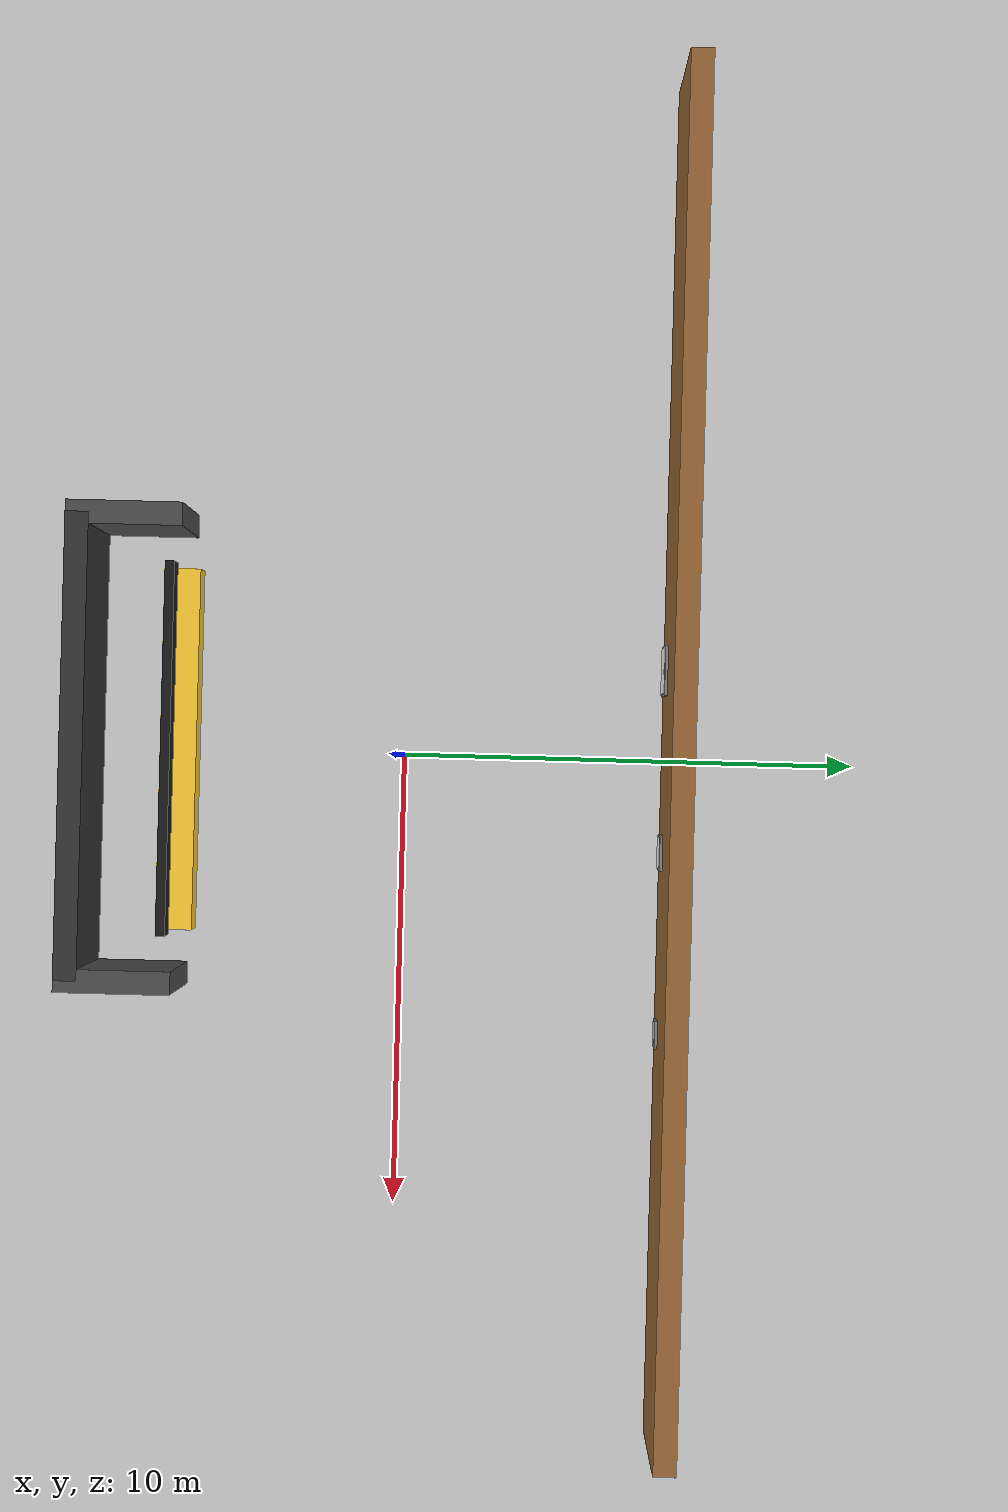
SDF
<?xml version="1.0" ?>
<sdf version="1.8">
  <world name="cafeteria_world">
    <!-- Plugins -->
    <physics name="1ms" type="ignored"><max_step_size>0.001</max_step_size><real_time_factor>1.0</real_time_factor></physics>
    <plugin filename="gz-sim-physics-system" name="gz::sim::systems::Physics"></plugin>
    <plugin filename="gz-sim-sensors-system" name="gz::sim::systems::Sensors"><render_engine>ogre</render_engine></plugin>
    <plugin filename="gz-sim-scene-broadcaster-system" name="gz::sim::systems::SceneBroadcaster"></plugin>
    <plugin filename="gz-sim-user-commands-system" name="gz::sim::systems::UserCommands"></plugin>

    <!-- Sun (Copied from corridor.sdf) -->
    <light type="directional" name="sun">
        <cast_shadows>true</cast_shadows>
        <pose>0 0 10 0 0 0</pose>
        <diffuse>0.8 0.8 0.8 1</diffuse>
        <direction>-0.5 0.1 -0.9</direction>
    </light>

    <!-- Ambient Light -->
    <light type="point" name="ambient_light">
      <pose>5 0 5 0 0 0</pose>
      <diffuse>0.9 0.9 0.9 1</diffuse>
      <cast_shadows>false</cast_shadows>
    </light>

    <!-- Ground (Copied from corridor.sdf) -->
    <model name="ground">
        <static>true</static>
        <link name="link">
            <visual name="v"><geometry><plane><normal>0 0 1</normal><size>100 100</size></plane></geometry><material><ambient>0.8 0.8 0.8 1</ambient></material></visual>
            <collision name="c"><geometry><plane><normal>0 0 1</normal></plane></geometry></collision>
        </link>
    </model>

    <!-- Kamera Açısı -->
    <gui fullscreen='0'>
      <camera name='user_camera'>
        <pose frame=''>-5 0 2 0 0.2 0</pose>
      </camera>
    </gui>

    <!-- === YAPI KISMI === -->

    <!-- Sol Duvar (Ahsap - Renk: Kahverengi) -->
    <model name="wood_wall_left">
      <static>true</static>
      <pose>0 6 2.5 0 0 0</pose>
      <link name="link">
        <collision name="collision">
          <geometry><box><size>30 0.5 5</size></box></geometry>
        </collision>
        <visual name="visual">
          <geometry><box><size>30 0.5 5</size></box></geometry>
          <material>
            <ambient>0.6 0.4 0.2 1</ambient> <!-- Kahverengi -->
            <diffuse>0.6 0.4 0.2 1</diffuse>
          </material>
        </visual>
      </link>
    </model>

    <!-- Cajun Corner Store (Replaces Pillars) -->
    <model name="cajun_corner_store">
      <static>true</static>
      <pose>0 -6 0 0 0 0</pose>

      <!-- Back Wall (Generic Grey) -->
      <link name="back_wall">
        <pose>0 -1 2 0 0 0</pose>
        <collision name="col_bw"><geometry><box><size>10 0.5 4</size></box></geometry></collision>
        <visual name="vis_bw"><geometry><box><size>10 0.5 4</size></box></geometry><material><ambient>0.2 0.2 0.2 1</ambient></material></visual>
      </link>

      <!-- Counter (Yellowish/Orange) -->
      <link name="counter">
        <pose>0 1 0.5 0 0 0</pose>
        <collision name="col_cnt"><geometry><box><size>8 0.8 1.0</size></box></geometry></collision>
        <visual name="vis_cnt">
            <geometry><box><size>8 0.8 1.0</size></box></geometry>
            <material><ambient>1.0 0.8 0.2 1</ambient><diffuse>1.0 0.8 0.2 1</diffuse></material>
        </visual>
      </link>

      <!-- Sign Board (Black with Text simulation) -->
      <link name="sign_board">
        <pose>0 1 3.5 0 0 0</pose>
        <collision name="col_sgn"><geometry><box><size>8 0.2 0.8</size></box></geometry></collision>
        <visual name="vis_sgn">
            <geometry><box><size>8 0.2 0.8</size></box></geometry>
            <material><ambient>0.1 0.1 0.1 1</ambient></material>
        </visual>
      </link>

      <!-- Side Pillars (To frame the store) -->
      <link name="side_pillar_l">
        <pose>-5 0 2 0 0 0</pose>
        <visual name="v"><geometry><box><size>0.5 2.5 4</size></box></geometry><material><ambient>0.3 0.3 0.3 1</ambient></material></visual>
      </link>
      <link name="side_pillar_r">
        <pose>5 0 2 0 0 0</pose>
        <visual name="v"><geometry><box><size>0.5 2.5 4</size></box></geometry><material><ambient>0.3 0.3 0.3 1</ambient></material></visual>
      </link>

    </model>

    <!-- === MASALAR REMOVED === -->

    <!-- === POSTERS (Integrated) === -->
    <include>
      <uri>model://poster_board_1</uri>
      <name>noticeboard_1</name>
      <pose>-2 5.74 1.25 0 0 -1.57</pose>
    </include>

    <include>
      <uri>model://poster_board_2</uri>
      <name>noticeboard_2</name>
      <pose>2 5.74 1.25 0 0 -1.57</pose>
    </include>

    <include>
      <uri>model://poster_board_3</uri>
      <name>noticeboard_3</name>
      <pose>6 5.74 1.25 0 0 -1.57</pose>
    </include>

  </world>
</sdf>

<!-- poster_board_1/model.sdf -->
<sdf version="1.8">
  <model name="poster_board">
    <static>true</static>
    <link name="link">
      <!-- Frame (Large: 1.1 width x 1.6 height) -->
      <visual name="frame">
        <geometry><box><size>0.1 1.1 1.6</size></box></geometry>
        <material><ambient>0.5 0.5 0.5 1</ambient><diffuse>0.5 0.5 0.5 1</diffuse></material>
      </visual>

      <!-- Poster Content (1.0 x 1.5) -->
      <visual name="poster">
        <pose>0.06 0 -0.05 0 0 0</pose>
        <geometry><box><size>0.01 1.0 1.5</size></box></geometry>
        <material>
          <ambient>1 1 1 1</ambient><diffuse>1 1 1 1</diffuse>
          <pbr><metal><albedo_map>materials/textures/poster.jpeg</albedo_map></metal></pbr>
        </material>
      </visual>

      <!-- ArUco Marker (Top Edge) -->
      <visual name="aruco_marker">
        <pose>0.065 0 0.7 0 0 0</pose>
        <geometry><box><size>0.01 0.15 0.15</size></box></geometry>
        <material>
          <ambient>1 1 1 1</ambient><diffuse>1 1 1 1</diffuse>
          <pbr><metal><albedo_map>materials/textures/aruco_marker.png</albedo_map></metal></pbr>
        </material>
      </visual>

      <!-- Collision -->
       <collision name="collision">
         <geometry><box><size>0.1 1.1 1.6</size></box></geometry>
      </collision>
    </link>
  </model>
</sdf>

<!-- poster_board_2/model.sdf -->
<sdf version="1.8">
  <model name="poster_board">
    <static>true</static>
    <link name="link">
      <!-- Frame (Medium: 0.8 width x 1.1 height) -->
      <visual name="frame">
        <geometry><box><size>0.1 0.8 1.1</size></box></geometry>
        <material><ambient>0.5 0.5 0.5 1</ambient><diffuse>0.5 0.5 0.5 1</diffuse></material>
      </visual>

      <!-- Poster Content (0.7 x 1.0) -->
      <visual name="poster">
        <pose>0.06 0 -0.05 0 0 0</pose>
        <geometry><box><size>0.01 0.7 1.0</size></box></geometry>
        <material>
          <ambient>1 1 1 1</ambient><diffuse>1 1 1 1</diffuse>
          <pbr><metal><albedo_map>materials/textures/poster2.jpeg</albedo_map></metal></pbr>
        </material>
      </visual>

      <!-- ArUco Marker (Top Edge) -->
      <visual name="aruco_marker">
        <pose>0.065 0 0.45 0 0 0</pose>
        <geometry><box><size>0.01 0.15 0.15</size></box></geometry>
        <material>
          <ambient>1 1 1 1</ambient><diffuse>1 1 1 1</diffuse>
          <pbr><metal><albedo_map>materials/textures/aruco_marker.png</albedo_map></metal></pbr>
        </material>
      </visual>

       <collision name="collision">
         <geometry><box><size>0.1 0.8 1.1</size></box></geometry>
      </collision>
    </link>
  </model>
</sdf>

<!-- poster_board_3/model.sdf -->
<sdf version="1.8">
  <model name="poster_board_3">
    <static>true</static>
    <link name="link">
      <!-- Frame (Small: 0.6 width x 0.8 height) -->
      <visual name="frame">
        <geometry><box><size>0.1 0.6 0.8</size></box></geometry>
        <material><ambient>0.5 0.5 0.5 1</ambient><diffuse>0.5 0.5 0.5 1</diffuse></material>
      </visual>

      <!-- Poster Content (0.5 x 0.7) -->
      <visual name="poster">
        <pose>0.06 0 -0.05 0 0 0</pose>
        <geometry><box><size>0.01 0.5 0.7</size></box></geometry>
        <material>
          <ambient>1 1 1 1</ambient><diffuse>1 1 1 1</diffuse>
          <pbr><metal><albedo_map>materials/textures/poster3.jpeg</albedo_map></metal></pbr>
        </material>
      </visual>

      <!-- ArUco Marker (Top Edge) -->
      <visual name="aruco_marker">
        <pose>0.065 0 0.3 0 0 0</pose>
        <geometry><box><size>0.01 0.1 0.1</size></box></geometry>
        <material>
          <ambient>1 1 1 1</ambient><diffuse>1 1 1 1</diffuse>
          <pbr><metal><albedo_map>materials/textures/aruco_marker.png</albedo_map></metal></pbr>
        </material>
      </visual>

       <collision name="collision">
         <geometry><box><size>0.1 0.6 0.8</size></box></geometry>
      </collision>
    </link>
  </model>
</sdf>
